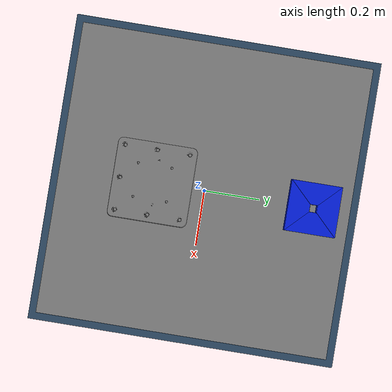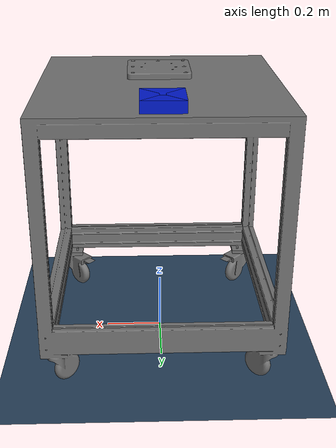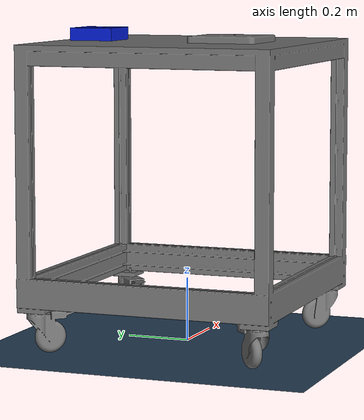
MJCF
<mujoco>

  <compiler autolimits="true" angle="radian" inertiafromgeom="true" texturedir="textures" meshdir="environment" />

  <option timestep="0.002" integrator="RK4" gravity="0 0 -9.81" cone="elliptic" impratio="10">
    <flag energy="enable" contact="enable" /> <!-- viscosity="0.1"  -->
  </option>
  <!-- Add some fluid viscosity to prevent things from jiggling forever -->
  <!-- condim="4", solimp="0.99 0.99 0.01", solref="0.01 1", and solver="elliptic"  for the better contact-->
  <asset>
    <texture name="grid" type="2d" builtin="checker" width="512" height="512" rgb1=".1 .2 .3" rgb2=".2 .3 .4" />
    <material name="grid" texture="grid" texrepeat="1 1" texuniform="true" reflectance=".2" />
    <texture name="iron" type="2d" builtin="flat" height="32" width="32" rgb1="0.45 0.45 0.45" />
    <material name="steel" texture="iron" shininess="0.9" specular="0.75" reflectance="0.3"/>
    <mesh file="table.stl" />
    <mesh file="Simplyfied_Galgen_2.stl" />
    <mesh file="Modul_Roboter_asm.stl" />
    <mesh file="Adapterplatte_UR5.stl" />
    <mesh file="hole_rounded_edge.stl" />
    <mesh file="hole_large.stl" />
    <mesh file="hole_huge.stl" />
    <mesh file="triangle_hole.stl" />
    <mesh file="square_hole.stl" />
    <mesh file="pentagon_hole.stl" />
    <mesh file="hexagon_hole.stl" />
    <mesh file="block_w_hole_m.stl" />
  </asset>
  <worldbody>
    <geom name="floor" size="0 0 .05" type="plane" material="grid" condim="3" />
    <light directional="true" diffuse=".4 .4 .4" specular="0.1 0.1 0.1" pos="0 0 5.0" dir="0 0 -1" castshadow="false"/>
    <light directional="true" diffuse=".6 .6 .6" specular="0.2 0.2 0.2" pos="0 0 4" dir="0 0 -1"/>
    <!--table1-->
    <body name="table1" pos="0 0 0" euler="0 0 -3.14159265359">
      <inertial pos="0 0 0" mass="100" diaginertia="1 1 1" />
      <geom type="mesh" mesh="Modul_Roboter_asm" material="steel" condim="4" conaffinity="1" contype="1"/>
    </body>
    <!-- plate1 -->
    <body name="plate1" pos="0 -0.145 0.95" euler="0 0 -3.14159265359">
      <inertial pos="0 0 0" mass="10" diaginertia="1 1 1" />
      <geom type="mesh" mesh="Adapterplatte_UR5" material="steel" condim="4"/>
    </body>

     <!-- plate3 -->

    <!--table2-->
    <!--plate2 -->

    <!-- hole -->
    <body name="wallpart_1" pos="0 .3 .95" euler="0 0 0">
      <inertial pos="0 0.0  0.0" mass="1" diaginertia="1 1 1"/>
      <geom type="mesh" mesh="hole_large" rgba="0.0 0.1 0.8 1" friction=".2"/>
    </body>
    <body name="wallpart_2" pos="0 .3 .95" euler="0 0 1.570796">
      <inertial pos="0 0.0  0.0" mass="1" diaginertia="1 1 1"/>
      <geom type="mesh" mesh="hole_large" rgba="0.0 0.1 0.8 1" friction=".2"/>
    </body>
    <body name="wallpart_3" pos="0 .3 .95" euler="0 0 -1.570796">
      <inertial pos="0 0.0  0.0" mass="1" diaginertia="1 1 1"/>
      <geom type="mesh" mesh="hole_large" rgba="0.0 0.1 0.8 1" friction=".2"/>
    </body>
    <body name="wallpart_4" pos="0 .3 .95" euler="0 0 3.141592">
      <inertial pos="0 0.0  0.0" mass="1" diaginertia="1 1 1"/>
      <geom type="mesh" mesh="hole_large" rgba="0.0 0.1 0.8 1" friction=".2"/>
    </body>

    <!-- peg -->

  </worldbody>

</mujoco>
